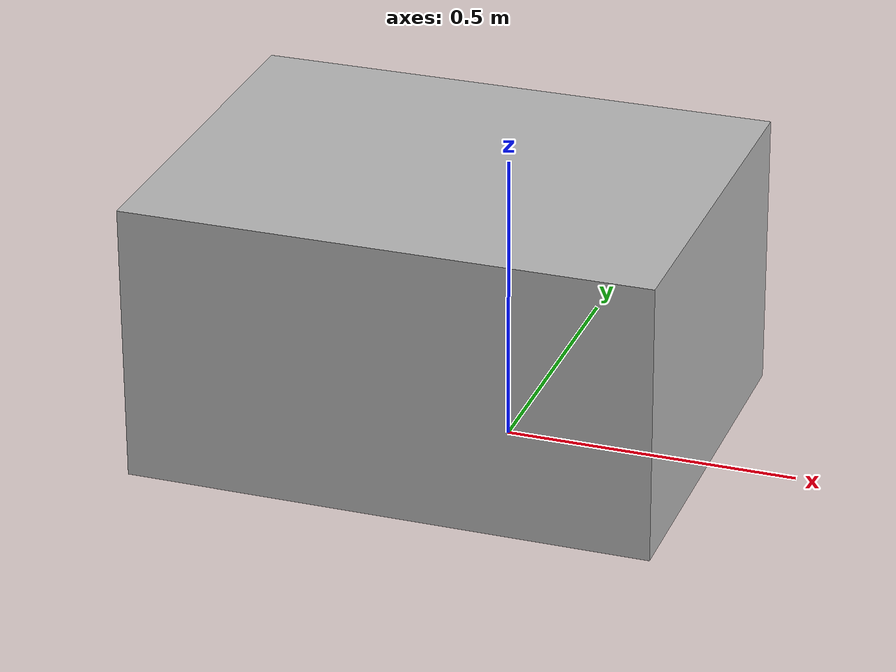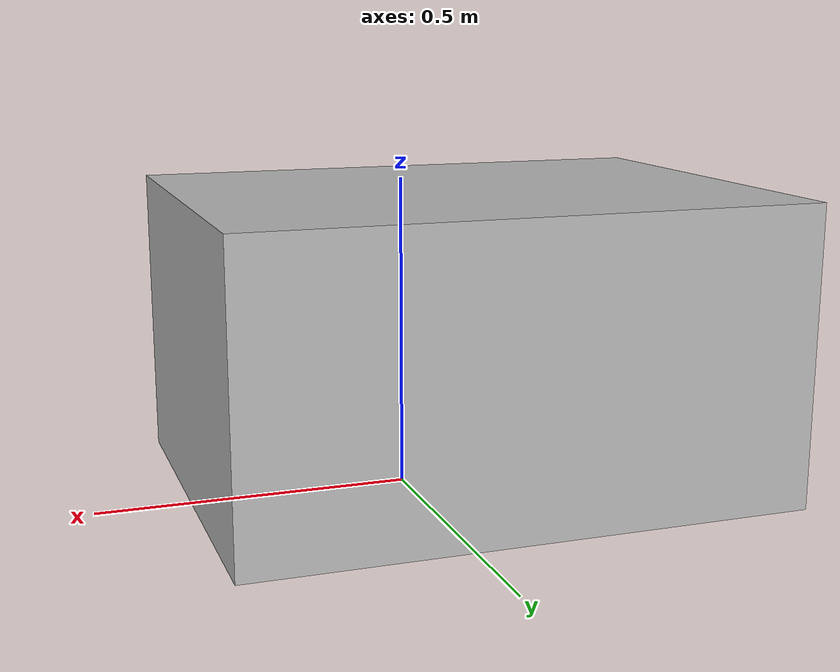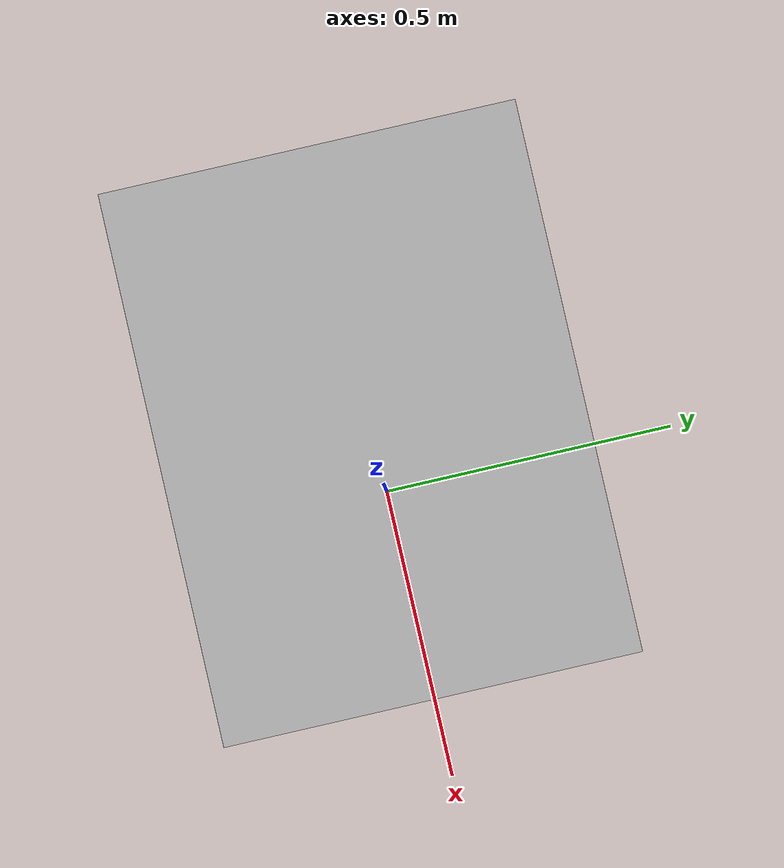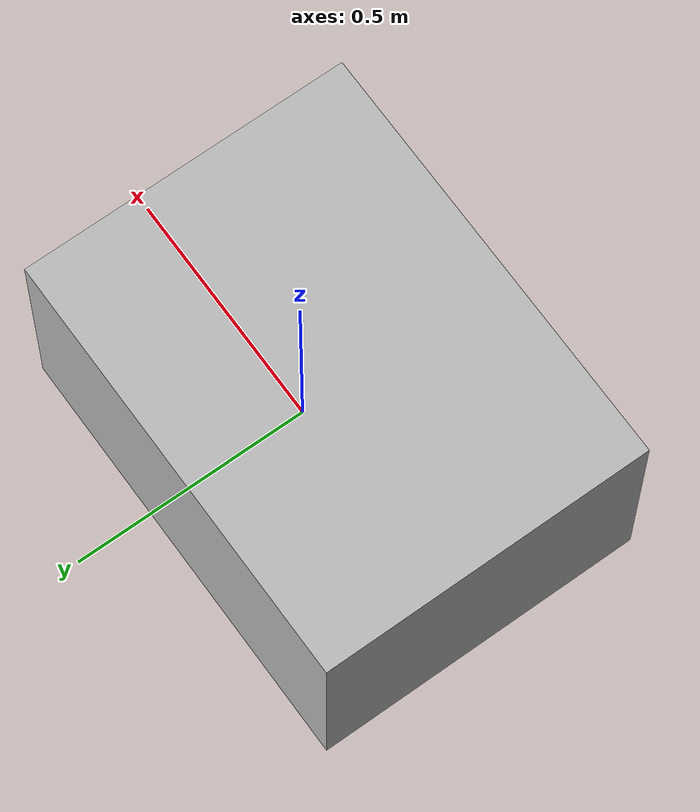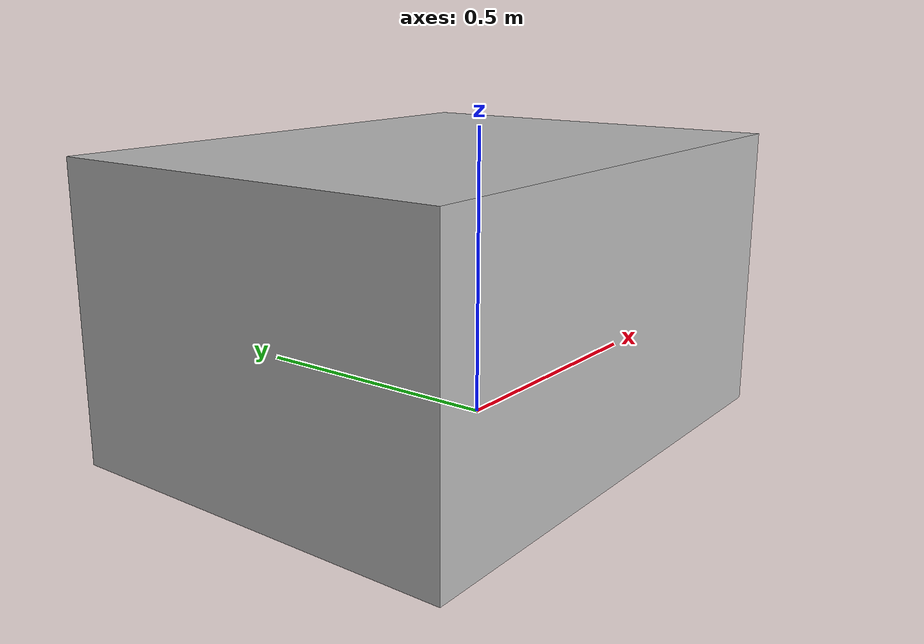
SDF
<sdf version='1.5'>
  <model name='powerbot'>
    <link name='base_link'>
      <pose>0 0 0 0 -0 0</pose>
      <inertial>
        <pose>0.448512 0.33719 0.238636 0 -0 0</pose>
        <mass>121</mass>
        <inertia>
          <ixx>5.89388</ixx>
          <ixy>-0.0704141</ixy>
          <ixz>1.26453</ixz>
          <iyy>5.82861</iyy>
          <iyz>-0.0630159</iyz>
          <izz>3.92997</izz>
        </inertia>
      </inertial>
      <collision name='base_link_collision'>
        <pose>0 0 0.24 0 -0 0</pose>
        <geometry>
          <box>
            <size>0.9 0.68 0.48</size>
          </box>
        </geometry>
      </collision>
      <collision name='base_link_collision_base_link_1'>
        <pose>0.27 0 0.075 0 -0 0</pose>
        <geometry>
          <box>
            <size>0.15 0.15 0.15</size>
          </box>
        </geometry>
      </collision>
      <visual name='base_link_visual'>
        <pose>-0.1 0 0.24 0 -0 0</pose>
        <geometry>
          <box>
            <size>0.9 0.68 0.48</size>
          </box>
        </geometry>
      </visual>
      <visual name='base_link_visual_base_link_1'>
        <pose>0.27 0 0.075 0 -0 0</pose>
        <geometry>
          <box>
            <size>0.15 0.15 0.15</size>
          </box>
        </geometry>
      </visual>
    </link>
  </model>
</sdf>
